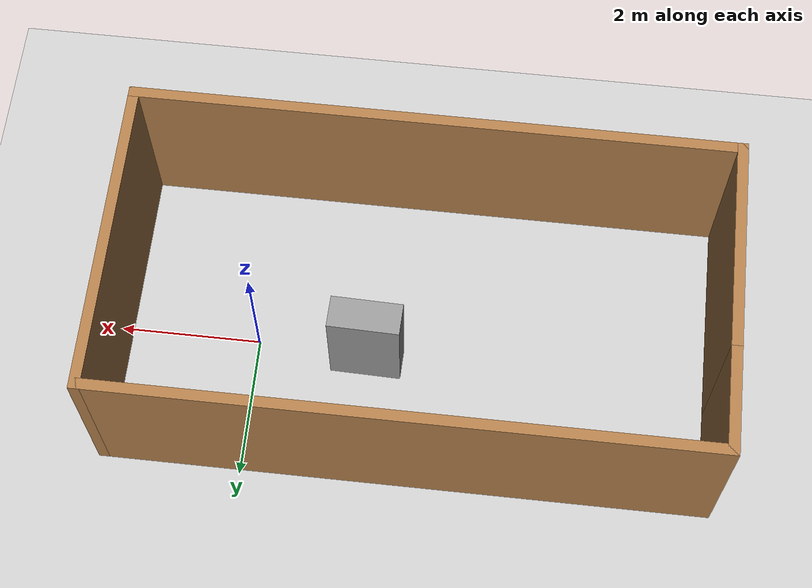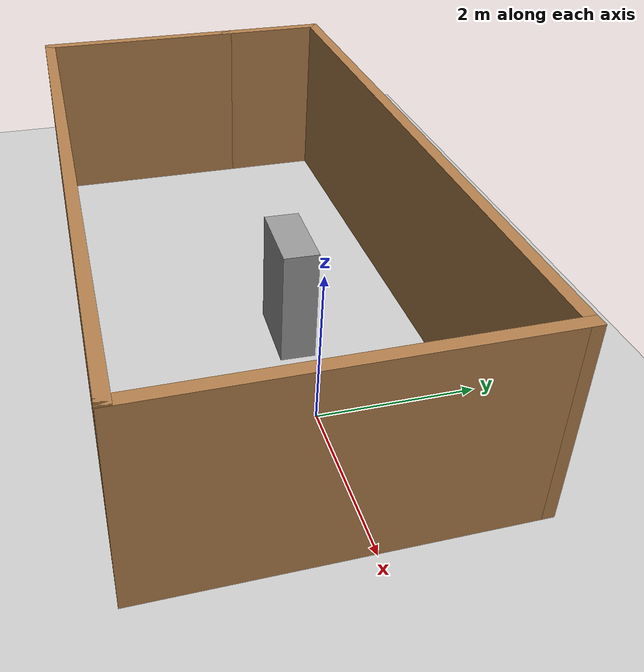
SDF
<sdf version="1.6">
 <world name="default">
  <light name="sun" type="directional">
   <pose>0 0 10 0 -0 0</pose>
   <diffuse>0.8 0.8 0.8 1</diffuse>
   <specular>0.2 0.2 0.2 1</specular>
   <attenuation>
    <range>1000</range>
    <constant>0.9</constant>
    <linear>0.01</linear>
    <quadratic>0.001</quadratic>
   </attenuation>
   <direction>-0.5 0.1 -0.9</direction>
  </light>
  <model name="ground_plane">
   <static>1</static>
   <link name="link">
    <collision name="collision">
     <geometry><plane><normal>0 0 1</normal><size>100 100</size></plane></geometry>
     <surface><friction><ode><mu>100</mu><mu2>50</mu2></ode></friction></surface>
    </collision>
    <visual name="visual">
     <cast_shadows>0</cast_shadows>
     <geometry><plane><normal>0 0 1</normal><size>100 100</size></plane></geometry>
     <material>
      <script><uri>file://media/materials/scripts/gazebo.material</uri><name>Gazebo/Grey</name></script>
     </material>
    </visual>
   </link>
  </model>
  <gravity>0 0 -9.8</gravity>
  <magnetic_field>6e-06 2.3e-05 -4.2e-05</magnetic_field>
  <atmosphere type="adiabatic"/>
  <physics name="default_physics" default="0" type="ode">
   <max_step_size>0.001</max_step_size>
   <real_time_factor>1</real_time_factor>
   <real_time_update_rate>1000</real_time_update_rate>
  </physics>
  <scene><ambient>0.4 0.4 0.4 1</ambient><background>0.7 0.7 0.7 1</background><shadows>1</shadows></scene>
  <audio><device>default</device></audio>
  <spherical_coordinates>
   <surface_model>EARTH_WGS84</surface_model>
   <latitude_deg>0</latitude_deg>
   <longitude_deg>0</longitude_deg>
   <elevation>0</elevation>
   <heading_deg>0</heading_deg>
  </spherical_coordinates>
  <model name="unit_box">
   <pose>-1.5691 0.104893 0.773637 -1e-06 6e-06 -0.025527</pose>
   <link name="link">
    <inertial>
     <mass>1</mass>
     <inertia>
      <ixx>0.166667</ixx>
      <ixy>0</ixy>
      <ixz>0</ixz>
      <iyy>0.166667</iyy>
      <iyz>0</iyz>
      <izz>0.166667</izz>
     </inertia>
    </inertial>
    <collision name="collision"><geometry><box><size>1 0.451882 1.54728</size></box></geometry></collision>
    <visual name="visual">
     <geometry><box><size>1 0.451882 1.54728</size></box></geometry>
     <material>
      <script><name>Gazebo/Grey</name><uri>file://media/materials/scripts/gazebo.material</uri></script>
     </material>
    </visual>
   </link>
  </model>
  <model name="bigmodelroom">
   <pose>-2.26418 -0.306244 0 0 -0 0</pose>
   <link name="Wall_0">
    <collision name="Wall_0_Collision">
     <geometry><box><size>3 0.15 2.5</size></box></geometry>
     <pose>0 0 1.25 0 -0 0</pose>
    </collision>
    <visual name="Wall_0_Visual">
     <pose>0 0 1.25 0 -0 0</pose>
     <geometry><box><size>3 0.15 2.5</size></box></geometry>
     <material>
      <script><uri>file://media/materials/scripts/gazebo.material</uri><name>Gazebo/Wood</name></script>
      <ambient>1 1 1 1</ambient>
     </material>
     <meta><layer>0</layer></meta>
    </visual>
    <pose>-4.175 -0.75 0 0 -0 -1.5708</pose>
   </link>
   <link name="Wall_1">
    <collision name="Wall_1_Collision">
     <geometry><box><size>8.5 0.15 2.5</size></box></geometry>
     <pose>0 0 1.25 0 -0 0</pose>
    </collision>
    <visual name="Wall_1_Visual">
     <pose>0 0 1.25 0 -0 0</pose>
     <geometry><box><size>8.5 0.15 2.5</size></box></geometry>
     <material>
      <script><uri>file://media/materials/scripts/gazebo.material</uri><name>Gazebo/Wood</name></script>
      <ambient>1 1 1 1</ambient>
     </material>
     <meta><layer>0</layer></meta>
    </visual>
    <pose>-0 -2.175 0 0 -0 0</pose>
   </link>
   <link name="Wall_2">
    <collision name="Wall_2_Collision">
     <geometry><box><size>4.5 0.15 2.5</size></box></geometry>
     <pose>0 0 1.25 0 -0 0</pose>
    </collision>
    <visual name="Wall_2_Visual">
     <pose>0 0 1.25 0 -0 0</pose>
     <geometry><box><size>4.5 0.15 2.5</size></box></geometry>
     <material>
      <script><uri>file://media/materials/scripts/gazebo.material</uri><name>Gazebo/Wood</name></script>
      <ambient>1 1 1 1</ambient>
     </material>
     <meta><layer>0</layer></meta>
    </visual>
    <pose>4.175 0 0 0 -0 1.5708</pose>
   </link>
   <link name="Wall_3">
    <collision name="Wall_3_Collision">
     <geometry><box><size>8.5 0.15 2.5</size></box></geometry>
     <pose>0 0 1.25 0 -0 0</pose>
    </collision>
    <visual name="Wall_3_Visual">
     <pose>0 0 1.25 0 -0 0</pose>
     <geometry><box><size>8.5 0.15 2.5</size></box></geometry>
     <material>
      <script><uri>file://media/materials/scripts/gazebo.material</uri><name>Gazebo/Wood</name></script>
      <ambient>1 1 1 1</ambient>
     </material>
     <meta><layer>0</layer></meta>
    </visual>
    <pose>-0 2.175 0 0 -0 3.14159</pose>
   </link>
   <link name="Wall_4">
    <collision name="Wall_4_Collision">
     <geometry><box><size>1.65 0.15 2.5</size></box></geometry>
     <pose>0 0 1.25 0 -0 0</pose>
    </collision>
    <visual name="Wall_4_Visual">
     <pose>0 0 1.25 0 -0 0</pose>
     <geometry><box><size>1.65 0.15 2.5</size></box></geometry>
     <material>
      <script><uri>file://media/materials/scripts/gazebo.material</uri><name>Gazebo/Wood</name></script>
      <ambient>1 1 1 1</ambient>
     </material>
     <meta><layer>0</layer></meta>
    </visual>
    <pose>-4.175 1.425 0 0 -0 -1.5708</pose>
   </link>
   <static>1</static>
  </model>
 </world>
</sdf>
